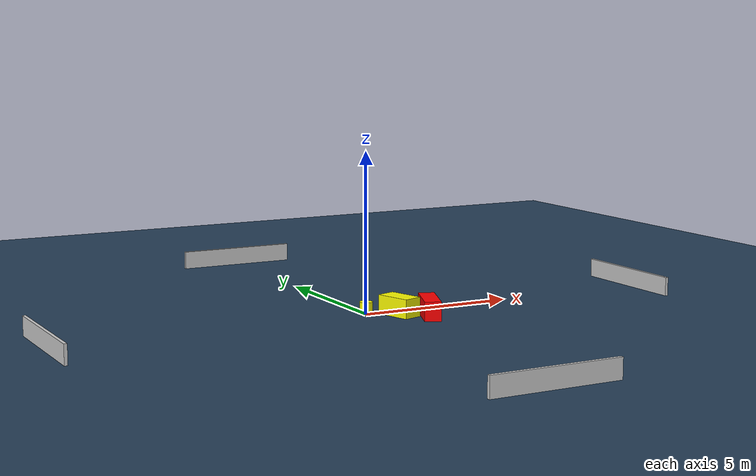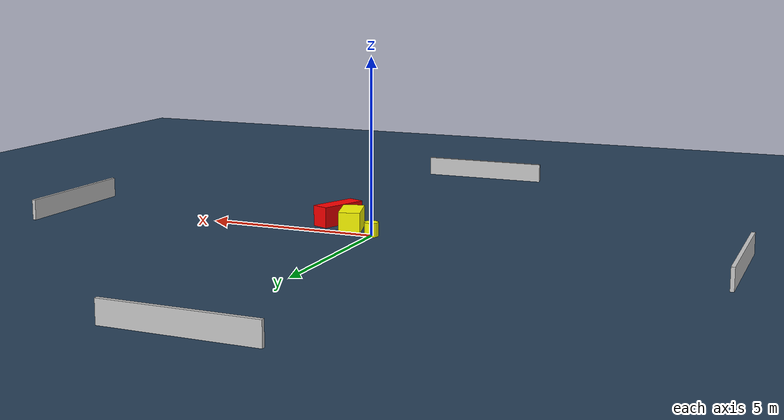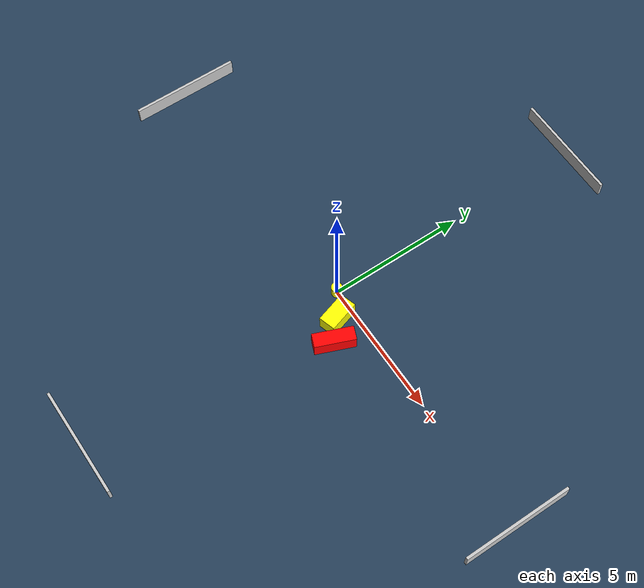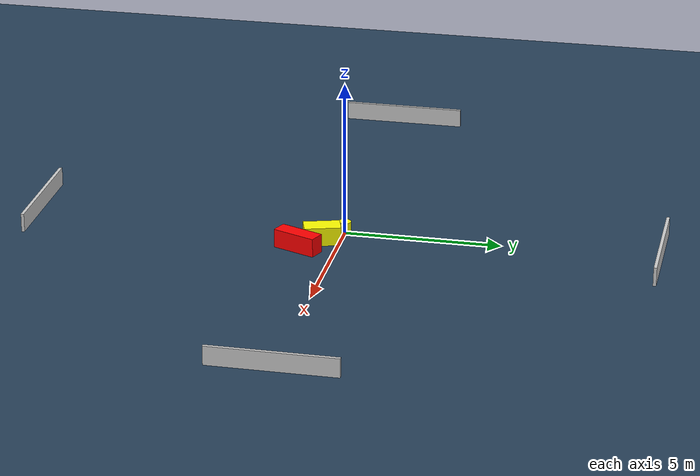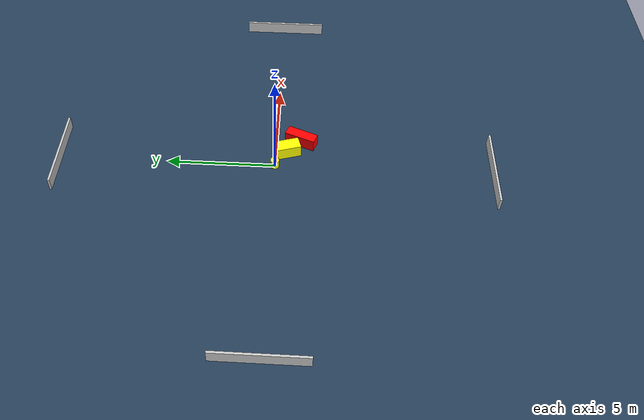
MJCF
<?xml version="1.0" ?>
<mujoco model="generated_environment">
  <option timestep="0.01" integrator="RK4" cone="elliptic"/>
  <default>
    <geom density="1"/>
  </default>
  <asset>
    <texture builtin="gradient" height="3072" name="skybox" rgb1="0.3 0.5 0.7" rgb2="0 0 0" type="skybox" width="512"/>
    <texture builtin="checker" height="300" name="groundplane" rgb1="0.2 0.3 0.4" rgb2="0.1 0.2 0.3" type="2d" width="300"/>
    <material name="groundplane" reflectance="0.2" texrepeat="5 5" texture="groundplane"/>
  </asset>
  <worldbody>
    <light dir="0 0 -1" directional="true" pos="0 0 1.5"/>
    <geom condim="3" friction="0.5 0.005 0.001" material="groundplane" name="floor" pos="0 0 0" size="0 0 0.05" type="plane"/>
    <body name="walls">
      <geom name="wall_1" condim="4" pos="-10.0 0.0 0.3" rgba="0.800000011920929 0.800000011920929 0.800000011920929 1.0" size="0.05 2.0 0.3" type="box"/>
      <geom name="wall_2" condim="4" pos="10.0 0.0 0.3" rgba="0.800000011920929 0.800000011920929 0.800000011920929 1.0" size="0.05 2.0 0.3" type="box"/>
      <geom name="wall_3" condim="4" pos="0.0 -10.0 0.3" rgba="0.800000011920929 0.800000011920929 0.800000011920929 1.0" size="2.0 0.05 0.3" type="box"/>
      <geom name="wall_4" condim="4" pos="0.0 10.0 0.3" rgba="0.800000011920929 0.800000011920929 0.800000011920929 1.0" size="2.0 0.05 0.3" type="box"/>
    </body>
    <body name="robot">
      <joint name="joint_x" type="slide" pos="0 0 0" axis="1 0 0"/>
      <joint name="joint_y" type="slide" pos="0 0 0" axis="0 1 0"/>
      <geom name="robot" type="cylinder" pos="0.0 0.0 0.2" size="0.2 0.2 0.0" mass="5.0" friction="1.0 0.005 0.0001" condim="4" rgba="1.0 1.0 0.0 1.0"/>
    </body>
    <body name="obstacle_1_movable">
      <geom name="obstacle_1_movable" condim="4" pos="0.8544887994052811 -0.551885918893954 0.3" euler="0 0 106.98012470418927" friction="0.0 0.005 0.001" rgba="1.0 1.0 0.0 1.0" size="0.5774150548136934 0.3078288469458169 0.3" type="box" mass="0.1"/>
      <joint type="free"/>
    </body>
    <body name="obstacle_2_static">
      <geom name="obstacle_2_static" condim="4" pos="1.5576651337831795 -1.1676873780767825 0.3" euler="0 0 67.95288908061649" friction="0.0 0.005 0.001" rgba="1.0 0.0 0.0 1.0" size="0.7278223200780023 0.2537365591151753 0.3" type="box"/>
    </body>
  </worldbody>
  <actuator>
    <motor name="actuator_x" joint="joint_x" gear="1" ctrlrange="-1 1"/>
    <motor name="actuator_y" joint="joint_y" gear="1" ctrlrange="-1 1"/>
  </actuator>
</mujoco>
